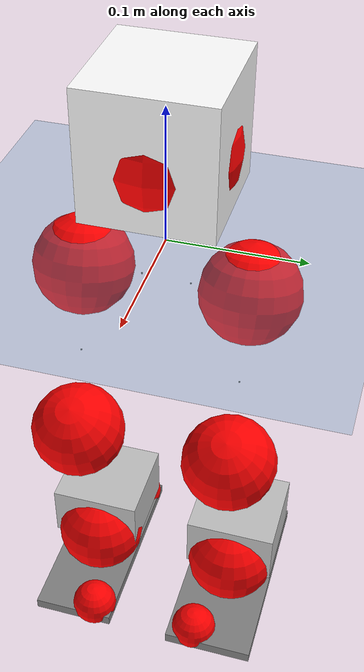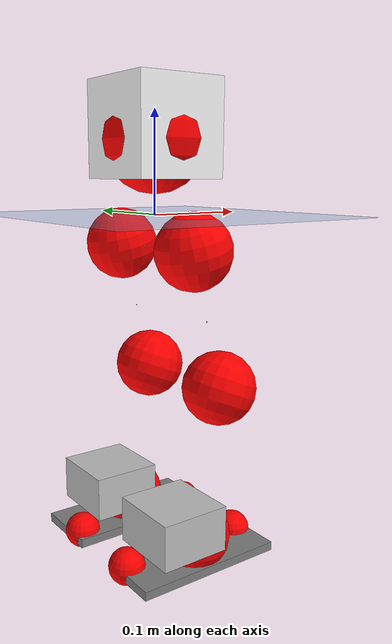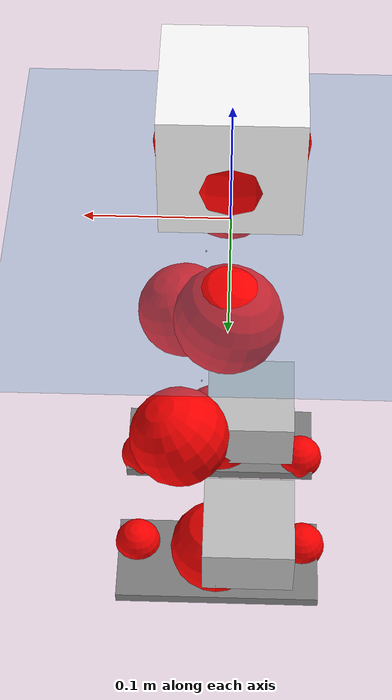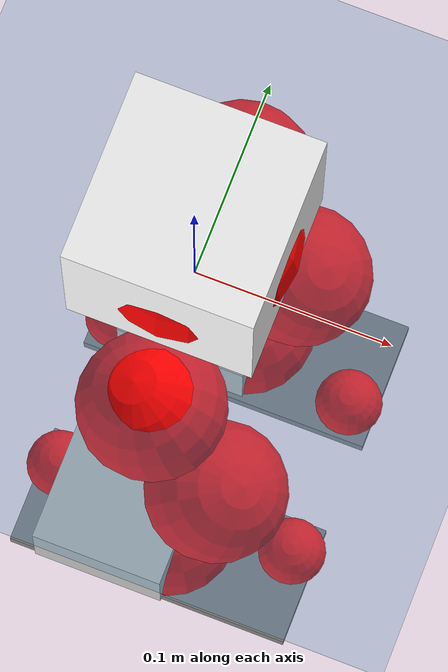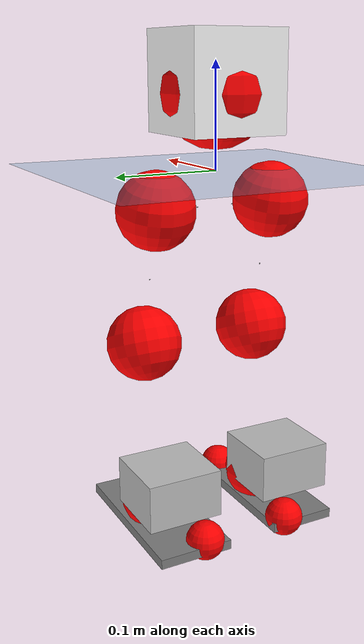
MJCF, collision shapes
<mujoco model="pi_12dof_release_v1">
  <compiler angle="radian" assetdir="assets" balanceinertia="true" inertiafromgeom="false"/>

  <option timestep="0.005" density="1.2" viscosity="2e-05"/>

  <size nkey="1"/>

  <visual>
    <quality shadowsize="8192"/>
    <map shadowclip="0.5"/>
  </visual>

  <default>
    <default class="/">
      <joint armature="0.01" damping="0.01" frictionloss="0.01"/>
      <geom contype="0" conaffinity="0" group="1" solref="-1000 -80"/>
      <site size="0.01 0.005 0.005" group="5"/>
      <general forcelimited="true" biastype="affine" gainprm="20" biasprm="0 -20 -0.5"/>
      <default class="foot">
        <geom size="0.0845 0.036 0.005" type="box" condim="6" group="4" priority="1" friction="0.9 0.2 0.2" solimp="0.015 1 0.005"/>
      </default>
      <default class="reward_collision_sphere">
        <geom group="5" rgba="1 0 0 1"/>
      </default>
    </default>
  </default>

  <asset>
    <texture type="skybox" colorspace="auto" name="//unnamed_texture_0" builtin="gradient" rgb1="0.95 0.95 0.95" rgb2="0.95 0.95 0.95" width="100" height="600"/>
    <texture type="2d" colorspace="auto" name="texplane" builtin="checker" rgb1="0.345 0.575 0.748" rgb2="0.345 0.575 0.748" markrgb="1 1 1" width="512" height="512"/>
    <material name="MatPlane" class="/" texture="texplane" texuniform="true" texrepeat="2 2" specular="0.9"/>
    <mesh name="baselink_1" class="/" file="baselink_1.STL"/>
    <mesh name="r_hip_pitch_link" class="/" file="r_hip_pitch_link.STL"/>
    <mesh name="r_hip_roll_link" class="/" file="r_hip_roll_link.STL"/>
    <mesh name="r_thigh_link" class="/" file="r_thigh_link.STL"/>
    <mesh name="r_calf_link" class="/" file="r_calf_link.STL"/>
    <mesh name="r_ankle_pitch_link" class="/" file="r_ankle_pitch_link.STL"/>
    <mesh name="r_ankle_roll_link" class="/" file="r_ankle_roll_link.STL"/>
    <mesh name="l_hip_pitch_link" class="/" file="l_hip_pitch_link.STL"/>
    <mesh name="l_hip_roll_link" class="/" file="l_hip_roll_link.STL"/>
    <mesh name="l_thigh_link" class="/" file="l_thigh_link.STL"/>
    <mesh name="l_calf_link" class="/" file="l_calf_link.STL"/>
    <mesh name="l_ankle_pitch_link" class="/" file="l_ankle_pitch_link.STL"/>
    <mesh name="l_ankle_roll_link" class="/" file="l_ankle_roll_link.STL"/>
  </asset>

  <worldbody>
    <geom name="floor" class="/" size="100 100 0.125" type="plane" group="0" material="MatPlane"/>
    <light name="toplight_shadow" class="/" pos="0 0 5" dir="0.0990148 0.0990148 -0.990148" type="directional" ambient="0.04 0.04 0.04" diffuse="0.55 0.55 0.55" specular="0.12 0.12 0.12"/>
    <light name="toplight_fill" class="/" pos="0 0 5" dir="0.0990148 0.0990148 -0.990148" type="directional" castshadow="false" ambient="0.04 0.04 0.04" diffuse="0.3 0.3 0.3" specular="0.08 0.08 0.08"/>
    <body name="trunk" pos="-1.13904e-06 -0.000234038 0.000310663" quat="1 -0.000230109 -1.40085e-05 7.41607e-05">
      <inertial pos="0.00234545 -0.0008185 0.0405528" quat="0.695454 0.0074902 0.00596121 0.718507" mass="1.71668" diaginertia="0.00994896 0.00254578 0.00432304"/>
      <joint name="//unnamed_joint_0" type="free"/>
      <geom name="//unnamed_geom_1" class="/" type="mesh" density="0" rgba="1 1 1 1" mesh="baselink_1"/>
      <geom name="//unnamed_geom_2" class="/" size="0.0464962 0.0464962 0.0464962" pos="0 0 0.0805504" type="box" rgba="1 1 1 1"/>
      <geom name="//unnamed_geom_3" class="reward_collision_sphere" size="0.0511458" pos="0 0 0.0704816"/>
      <site name="imu" class="/" pos="0.00195583 -0.000687024 -0.00291273" size="0.00929924"/>
      <camera name="track" class="/" pos="0 -1.55706 0" quat="0.707107 0.707107 0 0" mode="trackcom"/>
      <camera name="ego_camera" class="/" pos="0.0753272 0 0.181238" quat="-0.5 -0.5 0.5 0.5"/>
      <body name="r_hip_pitch_link" pos="9.45265e-05 -0.0176248 -0.0322207" quat="0.992194 4.72131e-05 -0.124703 3.2362e-06">
        <inertial pos="0.000781674 -0.0427476 -1.09094e-05" quat="-0.0185341 0.705856 -0.0281371 0.707553" mass="0.295975" diaginertia="0.000110364 2.835e-05 8.60412e-05"/>
        <joint name="r_hip_pitch_joint" class="/" pos="0 0 0" axis="-0.00493956 -0.999987 -0.000811413" range="-1.74023 1.23199" armature="0.00929293" damping="0.0150671" frictionloss="0.00930809"/>
        <geom name="//unnamed_geom_4" class="/" type="mesh" density="0" rgba="0.75294 0.75294 0.75294 1" mesh="r_hip_pitch_link"/>
        <geom name="//unnamed_geom_5" class="/" size="0.000464962 0.000464962 0.000464962" type="box" rgba="0.75294 0.75294 0.75294 1"/>
        <body name="r_hip_roll_link" pos="0.00131372 -0.043415 0.000324413" quat="1 0.000214728 -0.000272591 0.000166928">
          <inertial pos="-0.00127663 -0.000218978 -0.0629747" quat="0.707174 -0.0776205 -0.08455 0.697661" mass="0.31132" diaginertia="0.000341626 7.94696e-05 0.000132737"/>
          <joint name="r_hip_roll_joint" class="/" pos="0 0 0" axis="-0.999998 -0.00077503 -0.00181581" range="-0.115397 0.493189" armature="0.00923331" damping="0.0117118" frictionloss="0.00966104"/>
          <geom name="//unnamed_geom_6" class="/" type="mesh" density="0" rgba="0.75294 0.75294 0.75294 1" mesh="r_hip_roll_link"/>
          <geom name="//unnamed_geom_7" class="/" size="0.000464962 0.000464962 0.000464962" type="box" rgba="0.75294 0.75294 0.75294 1"/>
          <geom name="//unnamed_geom_8" class="reward_collision_sphere" size="0.0371969"/>
          <body name="r_thigh_link" pos="-0.000389689 3.18403e-05 -0.0699096" quat="1 0.000191452 5.17358e-05 -0.000249703">
            <inertial pos="-0.000348689 0.00049671 -0.0478893" quat="0.73676 0.676153 -0.00105223 0.00108216" mass="0.0885776" diaginertia="0.000127319 2.67209e-05 5.94897e-05"/>
            <joint name="r_thigh_joint" class="/" pos="0 0 0" axis="0.000106955 -0.00335881 -0.999994" range="-0.317341 0.603453" armature="0.00927883" damping="0.00362459" frictionloss="0.00957673"/>
            <geom name="//unnamed_geom_9" class="/" type="mesh" density="0" rgba="0.75294 0.75294 0.75294 1" mesh="r_thigh_link"/>
            <geom name="//unnamed_geom_10" class="/" size="0.000464962 0.000464962 0.000464962" type="box" rgba="0.75294 0.75294 0.75294 1"/>
            <body name="r_calf_link" pos="-0.000922383 -0.0004114 -0.0706999" quat="0.947609 4.36472e-05 0.319431 -8.83452e-05">
              <inertial pos="0.00010551 -0.000673228 -0.0707735" quat="0.999982 -0.00293289 -0.00416356 0.00311937" mass="0.659804" diaginertia="0.00363331 0.0010181 0.000181539"/>
              <joint name="r_calf_joint" class="/" pos="0 0 0" axis="0.0063951 -0.99998 -4.40798e-05" range="-1.64607 0.647232" armature="0.00896257" damping="0.00615804" frictionloss="0.00914594"/>
              <geom name="//unnamed_geom_11" class="/" type="mesh" density="0" rgba="0.75294 0.75294 0.75294 1" mesh="r_calf_link"/>
              <geom name="//unnamed_geom_12" class="/" size="0.000464962 0.000464962 0.000464962" type="box" rgba="0.75294 0.75294 0.75294 1"/>
              <geom name="//unnamed_geom_13" class="reward_collision_sphere" size="0.0371969"/>
              <body name="r_ankle_pitch_link" pos="0.000645972 0.000928771 -0.141705" quat="0.980075 -4.55022e-05 -0.198626 5.79847e-06">
                <inertial pos="0.00565916 0.00397411 0.000290315" quat="0.00185216 0.707413 -0.00212908 0.706795" mass="0.141716" diaginertia="0.000312936 6.3766e-05 0.000124104"/>
                <joint name="r_ankle_pitch_joint" class="/" pos="0 0 0" axis="0.00109853 -0.999993 -0.00350232" range="-1.3054 0.499527" armature="0.00941563" damping="0.0063297" frictionloss="0.00967334"/>
                <geom name="//unnamed_geom_14" class="/" type="mesh" density="0" rgba="0.75294 0.75294 0.75294 1" mesh="r_ankle_pitch_link"/>
                <geom name="//unnamed_geom_15" class="/" size="0.036267 0.0371969 0.0232481" type="box" rgba="0.75294 0.75294 0.75294 1"/>
                <body name="r_ankle_roll_link" pos="0.0767986 0.0016544 -0.000128128" quat="1 8.21374e-05 0.000291124 -0.000286179">
                  <inertial pos="-0.02297 0.000954189 -0.0150449" quat="0.558791 0.432404 0.43389 0.559035" mass="0.417485" diaginertia="0.00114192 0.000293233 0.000294882"/>
                  <joint name="r_ankle_roll_joint" class="/" pos="0 0 0" axis="-0.999996 0.000192549 0.0027682" range="-0.152724 0.146306" armature="0.00950944" damping="0.00854918" frictionloss="0.00916712"/>
                  <geom name="//unnamed_geom_16" class="/" type="mesh" density="0" rgba="0.75294 0.75294 0.75294 1" mesh="r_ankle_roll_link"/>
                  <geom name="//unnamed_geom_17" class="/" type="mesh" rgba="0.75294 0.75294 0.75294 1" mesh="r_ankle_roll_link"/>
                  <geom name="right_foot" class="foot" size="0.0796456 0.0330309 0.00452484" pos="-0.0512225 0 -0.0443027"/>
                  <geom name="//unnamed_geom_19" class="reward_collision_sphere" size="0.0371969" pos="-0.0502182 0 -0.0201376"/>
                  <geom name="//unnamed_geom_20" class="reward_collision_sphere" size="0.0185985" pos="0.0150654 0.0155706 -0.0402752"/>
                  <geom name="//unnamed_geom_21" class="reward_collision_sphere" size="0.0185985" pos="-0.120524 0.0155706 -0.0402752"/>
                  <site name="right_foot" class="foot" pos="-0.0512225 0 -0.0443027" size="0.00929924"/>
                </body>
              </body>
            </body>
          </body>
        </body>
      </body>
      <body name="l_hip_pitch_link" pos="0.0010787 0.0189216 -0.0328133" quat="0.99218 7.01719e-05 -0.124816 -8.82045e-05">
        <inertial pos="0.00128 0.0407491 -8.83472e-05" quat="-0.0385279 0.705553 0.0303379 0.706959" mass="0.316493" diaginertia="0.000130674 3.01486e-05 0.000104695"/>
        <joint name="l_hip_pitch_joint" class="/" pos="0 0 0" axis="-0.00461133 0.999984 0.00323411" range="-1.25208 1.75792" armature="0.00906334" damping="0.0145832" frictionloss="0.00897766"/>
        <geom name="//unnamed_geom_22" class="/" type="mesh" density="0" rgba="0.75294 0.75294 0.75294 1" mesh="l_hip_pitch_link"/>
        <geom name="//unnamed_geom_23" class="/" size="0.000464962 0.000464962 0.000464962" type="box" rgba="0.75294 0.75294 0.75294 1"/>
        <body name="l_hip_roll_link" pos="-0.000935338 0.043061 0.000316811" quat="1 -0.000190112 -6.96338e-05 0.000167293">
          <inertial pos="-0.00143355 0.000593931 -0.061526" quat="0.700293 -0.0754634 -0.075154 0.705866" mass="0.311298" diaginertia="0.000340893 7.83178e-05 0.000130187"/>
          <joint name="l_hip_roll_joint" class="/" pos="0 0 0" axis="-0.99999 -0.00448186 0.000144273" range="-0.50312 0.108111" armature="0.00908304" damping="0.00844442" frictionloss="0.00971267"/>
          <geom name="//unnamed_geom_24" class="/" type="mesh" density="0" rgba="0.75294 0.75294 0.75294 1" mesh="l_hip_roll_link"/>
          <geom name="//unnamed_geom_25" class="/" size="0.000464962 0.000464962 0.000464962" type="box" rgba="0.75294 0.75294 0.75294 1"/>
          <geom name="//unnamed_geom_26" class="reward_collision_sphere" size="0.0371969"/>
          <body name="l_thigh_link" pos="0.00041249 -0.000490912 -0.0706797" quat="1 0.000161542 -0.000251373 -0.000204563">
            <inertial pos="0.000720014 -0.00153356 -0.0469165" quat="0.678439 0.734657 0.000650494 0.000350324" mass="0.0904399" diaginertia="0.000127549 2.72569e-05 5.9982e-05"/>
            <joint name="l_thigh_joint" class="/" pos="0 0 0" axis="0.00119214 -0.000436196 -0.999999" range="-0.610122 0.296386" armature="0.00927377" damping="0.00281936" frictionloss="0.00920393"/>
            <geom name="//unnamed_geom_27" class="/" type="mesh" density="0" rgba="0.75294 0.75294 0.75294 1" mesh="l_thigh_link"/>
            <geom name="//unnamed_geom_28" class="/" size="0.000464962 0.000464962 0.000464962" type="box" rgba="0.75294 0.75294 0.75294 1"/>
            <body name="l_calf_link" pos="-0.000809456 -0.000576331 -0.0706274" quat="0.947651 -5.29134e-06 0.319308 2.07204e-06">
              <inertial pos="-0.00058166 0.00162047 -0.0707774" quat="0.99997 0.00518637 -0.00132469 0.00565187" mass="0.650756" diaginertia="0.00353968 0.000984382 0.000177622"/>
              <joint name="l_calf_joint" class="/" pos="0 0 0" axis="0.00183893 0.999998 0.00124901" range="-0.666737 1.64814" armature="0.00928317" damping="0.00624387" frictionloss="0.00945963"/>
              <geom name="//unnamed_geom_29" class="/" type="mesh" density="0" rgba="0.75294 0.75294 0.75294 1" mesh="l_calf_link"/>
              <geom name="//unnamed_geom_30" class="/" size="0.000464962 0.000464962 0.000464962" type="box" rgba="0.75294 0.75294 0.75294 1"/>
              <geom name="//unnamed_geom_31" class="reward_collision_sphere" size="0.0371969"/>
              <body name="l_ankle_pitch_link" pos="0.000739176 0.000690657 -0.140641" quat="0.980071 4.41054e-06 -0.198649 -1.01142e-05">
                <inertial pos="0.00514638 -0.000463506 0.00039429" quat="-0.00681925 0.707883 0.00273994 0.706291" mass="0.140954" diaginertia="0.000315798 6.3281e-05 0.000125832"/>
                <joint name="l_ankle_pitch_joint" class="/" pos="0 0 0" axis="0.000283829 0.999999 0.00117297" stiffness="0.00068604" range="-0.522169 1.28452" armature="0.00911889" damping="0.00401639" frictionloss="0.00951176"/>
                <geom name="//unnamed_geom_32" class="/" type="mesh" density="0" rgba="0.75294 0.75294 0.75294 1" mesh="l_ankle_pitch_link"/>
                <geom name="//unnamed_geom_33" class="/" size="0.036267 0.0371969 0.0232481" type="box" rgba="0.75294 0.75294 0.75294 1"/>
                <body name="l_ankle_roll_link" pos="0.0757353 4.53973e-05 0.0003621" quat="1 -3.05738e-05 -3.74392e-05 0.000127841">
                  <inertial pos="-0.0248694 -0.00146046 -0.0141917" quat="0.558917 0.431366 0.435039 0.558818" mass="0.416498" diaginertia="0.00117218 0.000294943 0.000293884"/>
                  <joint name="l_ankle_roll_joint" class="/" pos="0 0 0" axis="-0.999998 6.39503e-05 -0.00178868" range="-0.142431 0.170426" armature="0.00938423" damping="0.0093281" frictionloss="0.00925837"/>
                  <geom name="//unnamed_geom_34" class="/" type="mesh" density="0" rgba="0.75294 0.75294 0.75294 1" mesh="l_ankle_roll_link"/>
                  <geom name="//unnamed_geom_35" class="/" type="mesh" rgba="0.75294 0.75294 0.75294 1" mesh="l_ankle_roll_link"/>
                  <geom name="left_foot" class="foot" size="0.0820297 0.0362977 0.0046426" pos="-0.0512225 0 -0.0443027"/>
                  <geom name="//unnamed_geom_37" class="reward_collision_sphere" size="0.0371969" pos="-0.0502182 0 -0.0201376"/>
                  <geom name="//unnamed_geom_38" class="reward_collision_sphere" size="0.0185985" pos="0.0150654 -0.0155706 -0.0402752"/>
                  <geom name="//unnamed_geom_39" class="reward_collision_sphere" size="0.0185985" pos="-0.120524 -0.0155706 -0.0402752"/>
                  <site name="left_foot" class="foot" pos="-0.0512225 0 -0.0443027" size="0.00929924"/>
                </body>
              </body>
            </body>
          </body>
        </body>
      </body>
    </body>
  </worldbody>

  <contact>
    <pair class="/" geom1="floor" geom2="right_foot" name="//unnamed_contact_1"/>
    <pair class="/" geom1="floor" geom2="left_foot" name="//unnamed_contact_0"/>
  </contact>

  <actuator>
    <general name="r_hip_pitch_joint" class="/" joint="r_hip_pitch_joint" forcerange="-19.1538 19.1538" gainprm="18.5888" biasprm="0 -18.5888 -0.46739"/>
    <general name="r_hip_roll_joint" class="/" joint="r_hip_roll_joint" forcerange="-19.6711 19.6711" gainprm="18.5888" biasprm="0 -18.5888 -0.46739"/>
    <general name="r_thigh_joint" class="/" joint="r_thigh_joint" forcerange="-19.6883 19.6883" gainprm="18.5888" biasprm="0 -18.5888 -0.46739"/>
    <general name="r_calf_joint" class="/" joint="r_calf_joint" forcerange="-19.9854 19.9854" gainprm="18.5888" biasprm="0 -18.5888 -0.46739"/>
    <general name="r_ankle_pitch_joint" class="/" joint="r_ankle_pitch_joint" forcerange="-19.2113 19.2113" gainprm="18.5888" biasprm="0 -18.5888 -0.46739"/>
    <general name="r_ankle_roll_joint" class="/" joint="r_ankle_roll_joint" forcerange="-19.7358 19.7358" gainprm="18.5888" biasprm="0 -18.5888 -0.46739"/>
    <general name="l_hip_pitch_joint" class="/" joint="l_hip_pitch_joint" forcerange="-19.5922 19.5922" gainprm="18.5888" biasprm="0 -18.5888 -0.46739"/>
    <general name="l_hip_roll_joint" class="/" joint="l_hip_roll_joint" forcerange="-19.7948 19.7948" gainprm="18.5888" biasprm="0 -18.5888 -0.46739"/>
    <general name="l_thigh_joint" class="/" joint="l_thigh_joint" forcerange="-19.2002 19.2002" gainprm="18.5888" biasprm="0 -18.5888 -0.46739"/>
    <general name="l_calf_joint" class="/" joint="l_calf_joint" forcerange="-19.4531 19.4531" gainprm="18.5888" biasprm="0 -18.5888 -0.46739"/>
    <general name="l_ankle_pitch_joint" class="/" joint="l_ankle_pitch_joint" forcerange="-19.4942 19.4942" gainprm="18.5888" biasprm="0 -18.5888 -0.46739"/>
    <general name="l_ankle_roll_joint" class="/" joint="l_ankle_roll_joint" forcerange="-18.8536 18.8536" gainprm="18.5888" biasprm="0 -18.5888 -0.46739"/>
  </actuator>

  <sensor>
    <gyro site="imu" name="imu_angular_velocity"/>
    <velocimeter site="imu" name="imu_linear_velocity"/>
    <framelinvel objtype="site" objname="left_foot" name="left_foot_global_linear_velocity"/>
    <framelinvel objtype="site" objname="right_foot" name="right_foot_global_linear_velocity"/>
  </sensor>

  <keyframe>
    <key name="home" qpos="0 0 0.291 1 0 0 0 0.4 0 0 -0.8 0.4 0 -0.4 0 0 0.8 -0.4 0"/>
  </keyframe>
</mujoco>
